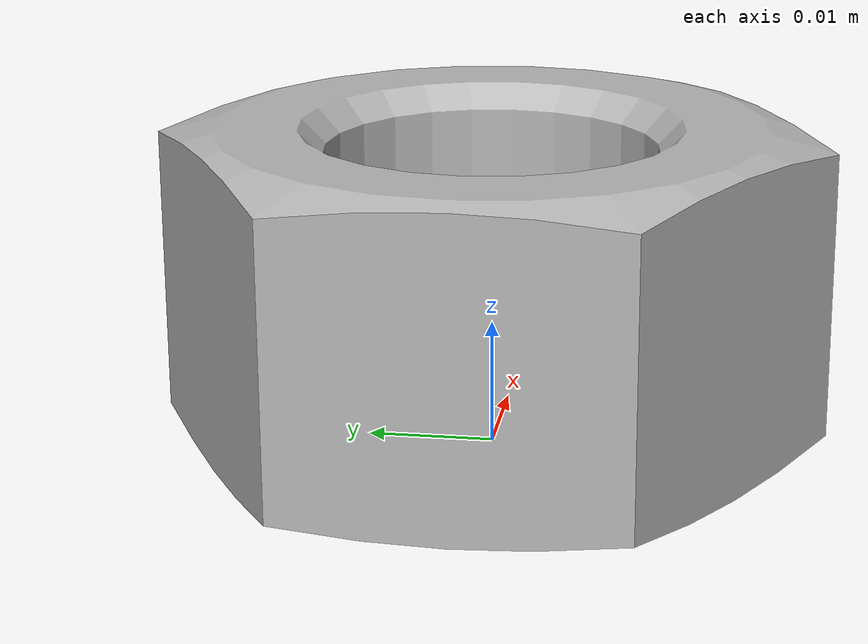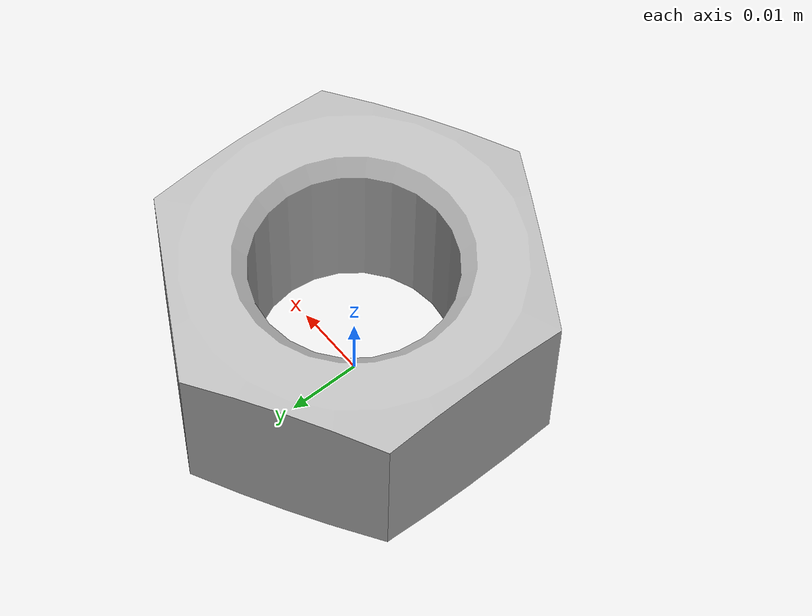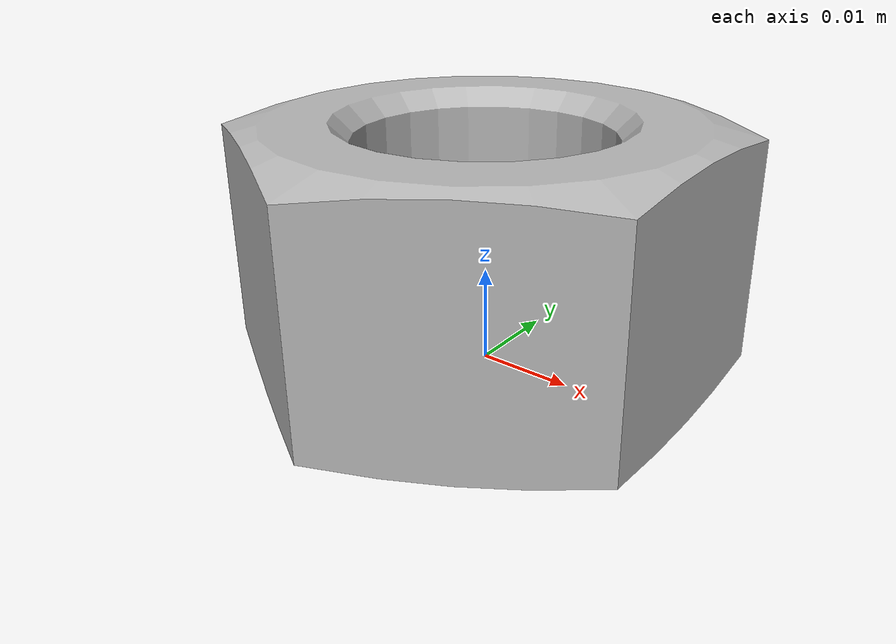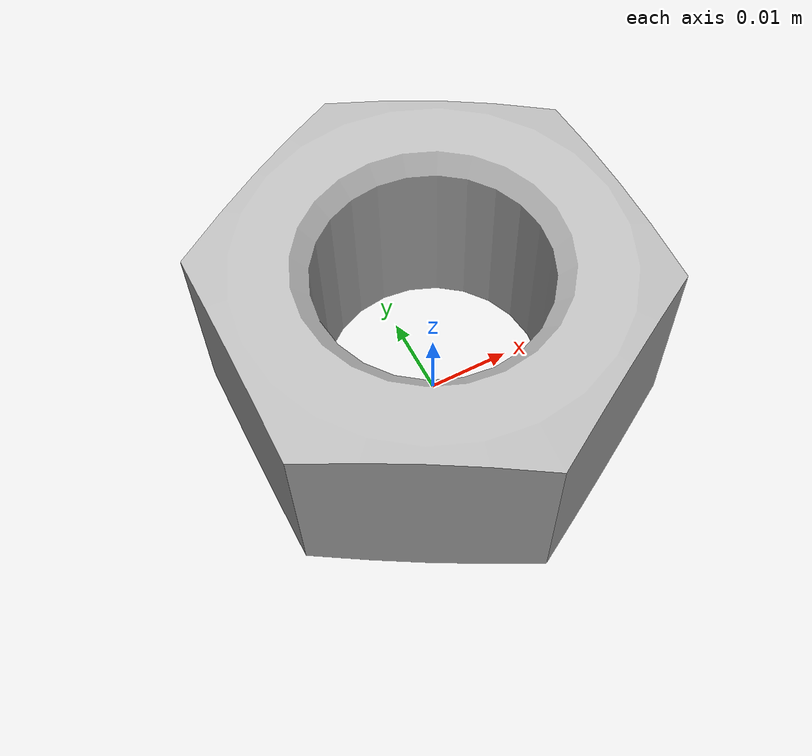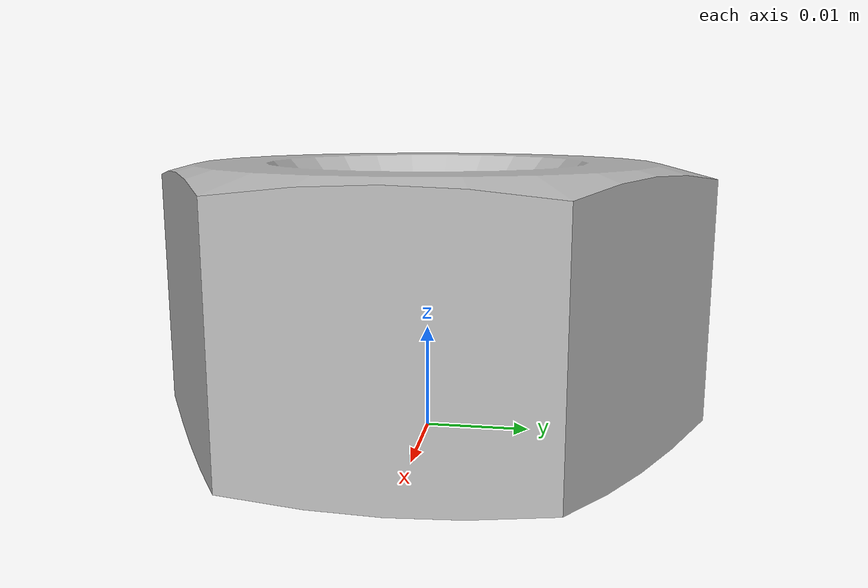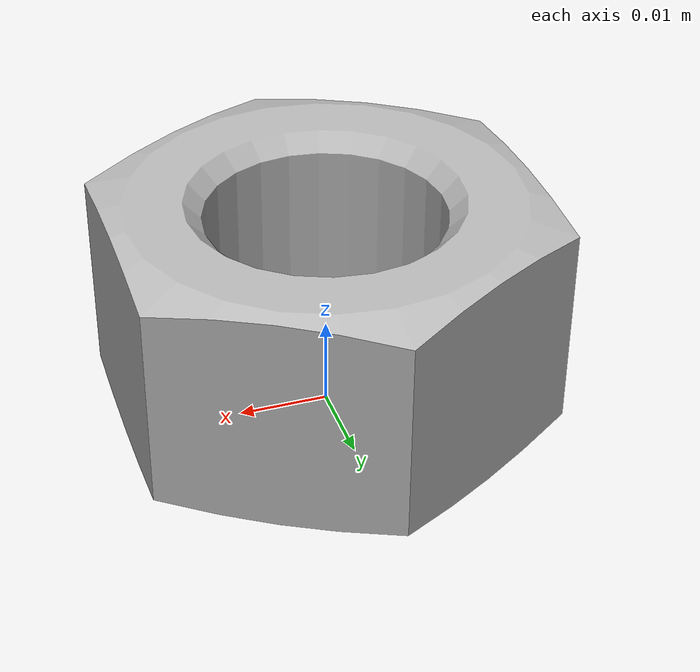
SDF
<?xml version="1.0" ?>
<sdf version="1.5">
  <model name="M30">
    <static>true</static>
    <link name="link">
      <pose>0 0 0 0 0 0</pose>
      <collision name="collision">
        <geometry>
          <mesh>
            <uri>model://M30/meshes/M30.dae</uri>
          </mesh>
        </geometry>
      </collision>
      <visual name="visual">
        <geometry>
          <mesh>
            <uri>model://M30/meshes/M30.dae</uri>
          </mesh>
        </geometry>
      </visual>
    </link>
  </model>
</sdf>
